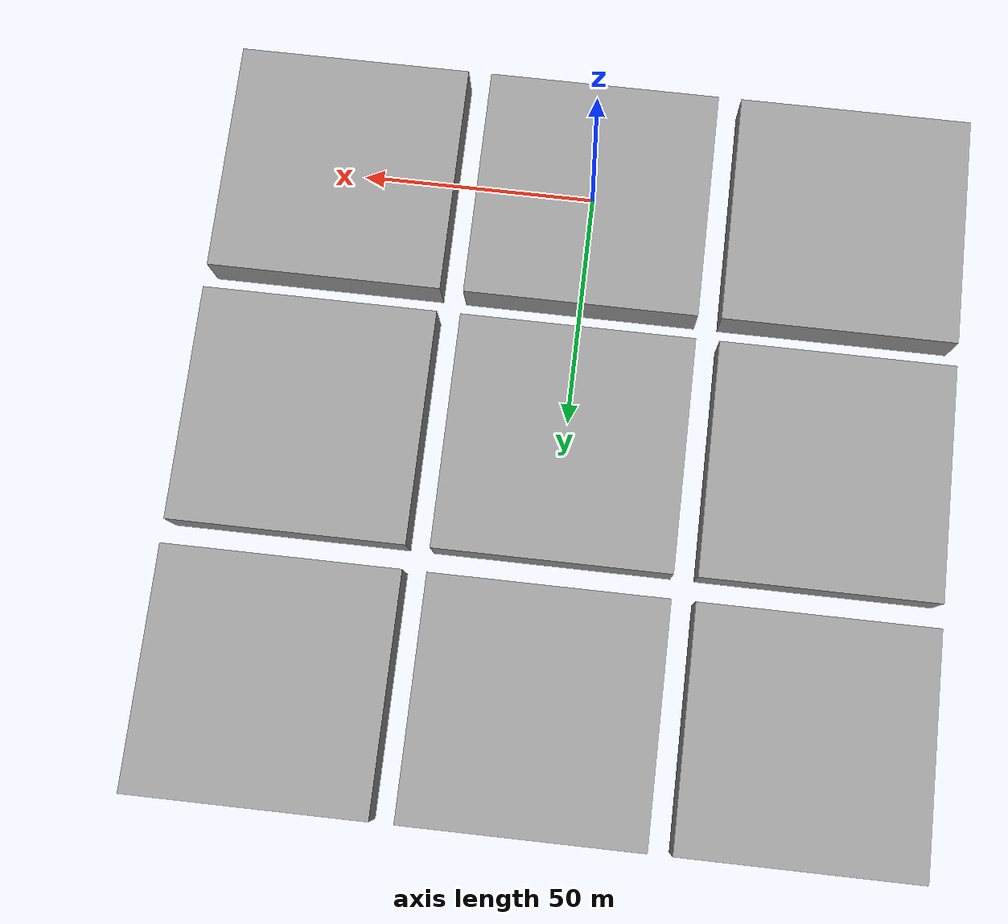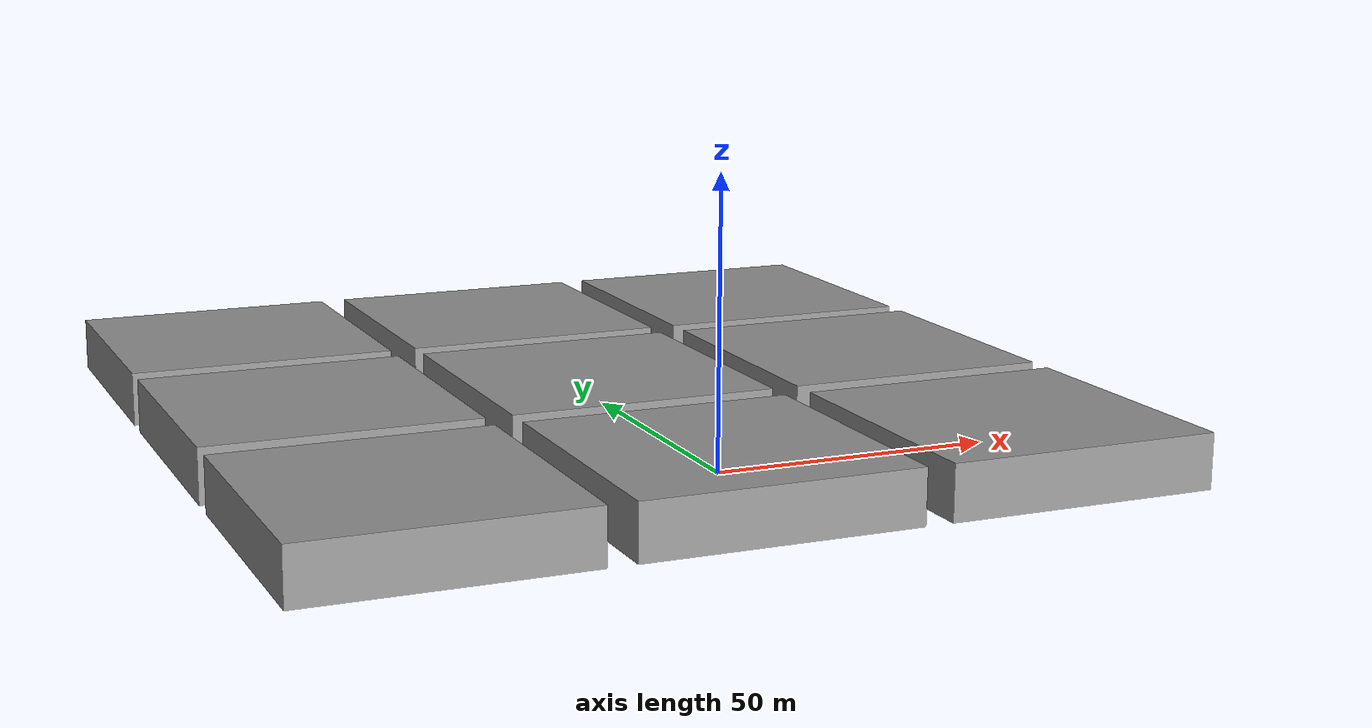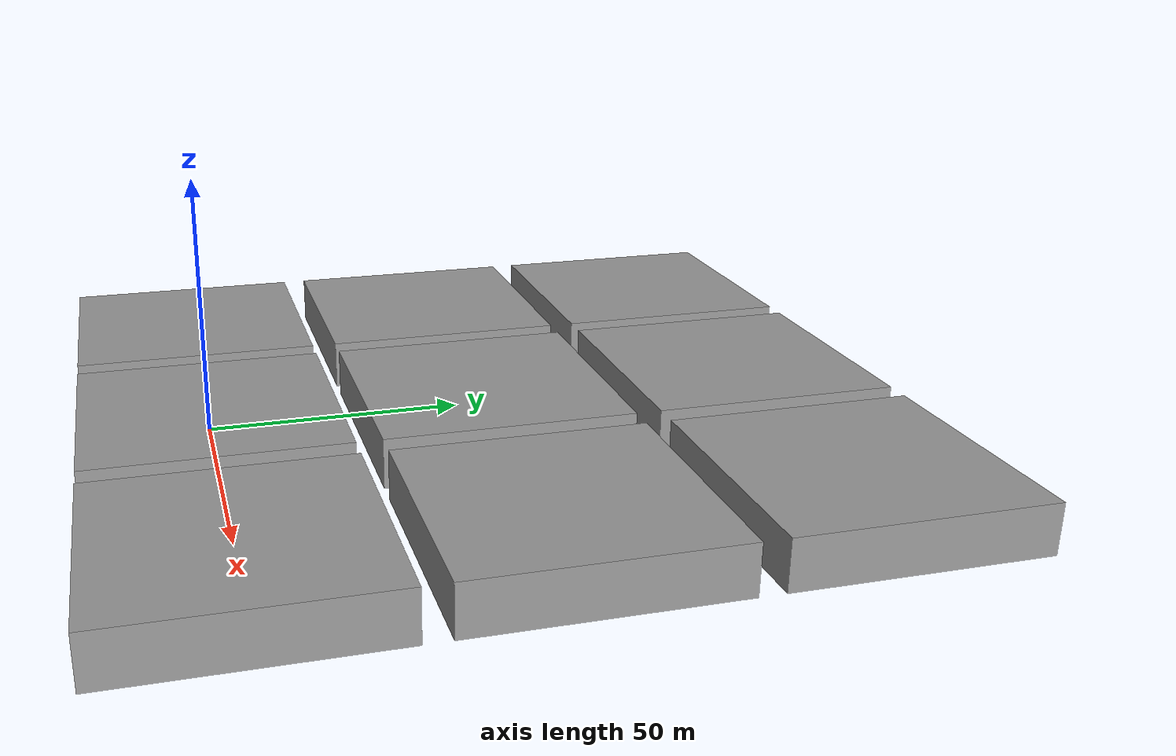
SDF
<?xml version='1.0'?>
<sdf version='1.6'>
  <model name='minpillar9_50'>
    <link name='link'>
      <pose frame=''>0 0 0 0 -0 0</pose>
      <inertial>
        <mass>1</mass>
        <inertia>
          <ixx>0.166667</ixx>
          <ixy>0</ixy>
          <ixz>0</ixz>
          <iyy>0.166667</iyy>
          <iyz>0</iyz>
          <izz>0.166667</izz>
        </inertia>
        <pose frame=''>0 0 0 0 -0 0</pose>
      </inertial>
      <self_collide>0</self_collide>
      <kinematic>0</kinematic>
      <gravity>1</gravity>
      <visual name='visual'>
        <geometry>
          <box>
            <size>50 50 10</size>
          </box>
        </geometry>
        <material>
          <script>
            <name>Gazebo/Grey</name>
            <uri>file://media/materials/scripts/gazebo.material</uri>
          </script>
          <ambient>0.3 0.3 0.3 1</ambient>
          <diffuse>0.7 0.7 0.7 1</diffuse>
          <specular>0.01 0.01 0.01 1</specular>
          <emissive>0 0 0 1</emissive>
          <shader type='vertex'>
            <normal_map>__default__</normal_map>
          </shader>
        </material>
        <pose frame=''>0 0 0 0 -0 0</pose>
        <transparency>0</transparency>
        <cast_shadows>1</cast_shadows>
      </visual>
      <collision name='collision'>
        <laser_retro>0</laser_retro>
        <max_contacts>10</max_contacts>
        <pose frame=''>0 0 0 0 -0 0</pose>
        <geometry>
          <box>
            <size>50 50 10</size>
          </box>
        </geometry>
        <surface>
          <friction>
            <ode>
              <mu>1</mu>
              <mu2>1</mu2>
              <fdir1>0 0 0</fdir1>
              <slip1>0</slip1>
              <slip2>0</slip2>
            </ode>
            <torsional>
              <coefficient>1</coefficient>
              <patch_radius>0</patch_radius>
              <surface_radius>0</surface_radius>
              <use_patch_radius>1</use_patch_radius>
              <ode>
                <slip>0</slip>
              </ode>
            </torsional>
          </friction>
          <bounce>
            <restitution_coefficient>0</restitution_coefficient>
            <threshold>1e+06</threshold>
          </bounce>
          <contact>
            <collide_without_contact>0</collide_without_contact>
            <collide_without_contact_bitmask>1</collide_without_contact_bitmask>
            <collide_bitmask>1</collide_bitmask>
            <ode>
              <soft_cfm>0</soft_cfm>
              <soft_erp>0.2</soft_erp>
              <kp>1e+13</kp>
              <kd>1</kd>
              <max_vel>0.01</max_vel>
              <min_depth>0</min_depth>
            </ode>
            <bullet>
              <split_impulse>1</split_impulse>
              <split_impulse_penetration_threshold>-0.01</split_impulse_penetration_threshold>
              <soft_cfm>0</soft_cfm>
              <soft_erp>0.2</soft_erp>
              <kp>1e+13</kp>
              <kd>1</kd>
            </bullet>
          </contact>
        </surface>
      </collision>
    </link>
    <link name='link_clone'>
      <pose frame=''>0 55 0 0 -0 0</pose>
      <inertial>
        <mass>1</mass>
        <inertia>
          <ixx>0.166667</ixx>
          <ixy>0</ixy>
          <ixz>0</ixz>
          <iyy>0.166667</iyy>
          <iyz>0</iyz>
          <izz>0.166667</izz>
        </inertia>
        <pose frame=''>0 0 0 0 -0 0</pose>
      </inertial>
      <self_collide>0</self_collide>
      <kinematic>0</kinematic>
      <gravity>1</gravity>
      <visual name='visual'>
        <geometry>
          <box>
            <size>50 50 10</size>
          </box>
        </geometry>
        <material>
          <script>
            <name>Gazebo/Grey</name>
            <uri>file://media/materials/scripts/gazebo.material</uri>
          </script>
          <ambient>0.3 0.3 0.3 1</ambient>
          <diffuse>0.7 0.7 0.7 1</diffuse>
          <specular>0.01 0.01 0.01 1</specular>
          <emissive>0 0 0 1</emissive>
          <shader type='vertex'>
            <normal_map>__default__</normal_map>
          </shader>
        </material>
        <pose frame=''>0 0 0 0 -0 0</pose>
        <transparency>0</transparency>
        <cast_shadows>1</cast_shadows>
      </visual>
      <collision name='collision'>
        <laser_retro>0</laser_retro>
        <max_contacts>10</max_contacts>
        <pose frame=''>0 0 0 0 -0 0</pose>
        <geometry>
          <box>
            <size>50 50 10</size>
          </box>
        </geometry>
        <surface>
          <friction>
            <ode>
              <mu>1</mu>
              <mu2>1</mu2>
              <fdir1>0 0 0</fdir1>
              <slip1>0</slip1>
              <slip2>0</slip2>
            </ode>
            <torsional>
              <coefficient>1</coefficient>
              <patch_radius>0</patch_radius>
              <surface_radius>0</surface_radius>
              <use_patch_radius>1</use_patch_radius>
              <ode>
                <slip>0</slip>
              </ode>
            </torsional>
          </friction>
          <bounce>
            <restitution_coefficient>0</restitution_coefficient>
            <threshold>1e+06</threshold>
          </bounce>
          <contact>
            <collide_without_contact>0</collide_without_contact>
            <collide_without_contact_bitmask>1</collide_without_contact_bitmask>
            <collide_bitmask>1</collide_bitmask>
            <ode>
              <soft_cfm>0</soft_cfm>
              <soft_erp>0.2</soft_erp>
              <kp>1e+13</kp>
              <kd>1</kd>
              <max_vel>0.01</max_vel>
              <min_depth>0</min_depth>
            </ode>
            <bullet>
              <split_impulse>1</split_impulse>
              <split_impulse_penetration_threshold>-0.01</split_impulse_penetration_threshold>
              <soft_cfm>0</soft_cfm>
              <soft_erp>0.2</soft_erp>
              <kp>1e+13</kp>
              <kd>1</kd>
            </bullet>
          </contact>
        </surface>
      </collision>
    </link>
    <link name='link_clone_0'>
      <pose frame=''>-55 0 0 0 -0 0</pose>
      <inertial>
        <mass>1</mass>
        <inertia>
          <ixx>0.166667</ixx>
          <ixy>0</ixy>
          <ixz>0</ixz>
          <iyy>0.166667</iyy>
          <iyz>0</iyz>
          <izz>0.166667</izz>
        </inertia>
        <pose frame=''>0 0 0 0 -0 0</pose>
      </inertial>
      <self_collide>0</self_collide>
      <kinematic>0</kinematic>
      <gravity>1</gravity>
      <visual name='visual'>
        <geometry>
          <box>
            <size>50 50 10</size>
          </box>
        </geometry>
        <material>
          <script>
            <name>Gazebo/Grey</name>
            <uri>file://media/materials/scripts/gazebo.material</uri>
          </script>
          <ambient>0.3 0.3 0.3 1</ambient>
          <diffuse>0.7 0.7 0.7 1</diffuse>
          <specular>0.01 0.01 0.01 1</specular>
          <emissive>0 0 0 1</emissive>
          <shader type='vertex'>
            <normal_map>__default__</normal_map>
          </shader>
        </material>
        <pose frame=''>0 0 0 0 -0 0</pose>
        <transparency>0</transparency>
        <cast_shadows>1</cast_shadows>
      </visual>
      <collision name='collision'>
        <laser_retro>0</laser_retro>
        <max_contacts>10</max_contacts>
        <pose frame=''>0 0 0 0 -0 0</pose>
        <geometry>
          <box>
            <size>50 50 10</size>
          </box>
        </geometry>
        <surface>
          <friction>
            <ode>
              <mu>1</mu>
              <mu2>1</mu2>
              <fdir1>0 0 0</fdir1>
              <slip1>0</slip1>
              <slip2>0</slip2>
            </ode>
            <torsional>
              <coefficient>1</coefficient>
              <patch_radius>0</patch_radius>
              <surface_radius>0</surface_radius>
              <use_patch_radius>1</use_patch_radius>
              <ode>
                <slip>0</slip>
              </ode>
            </torsional>
          </friction>
          <bounce>
            <restitution_coefficient>0</restitution_coefficient>
            <threshold>1e+06</threshold>
          </bounce>
          <contact>
            <collide_without_contact>0</collide_without_contact>
            <collide_without_contact_bitmask>1</collide_without_contact_bitmask>
            <collide_bitmask>1</collide_bitmask>
            <ode>
              <soft_cfm>0</soft_cfm>
              <soft_erp>0.2</soft_erp>
              <kp>1e+13</kp>
              <kd>1</kd>
              <max_vel>0.01</max_vel>
              <min_depth>0</min_depth>
            </ode>
            <bullet>
              <split_impulse>1</split_impulse>
              <split_impulse_penetration_threshold>-0.01</split_impulse_penetration_threshold>
              <soft_cfm>0</soft_cfm>
              <soft_erp>0.2</soft_erp>
              <kp>1e+13</kp>
              <kd>1</kd>
            </bullet>
          </contact>
        </surface>
      </collision>
    </link>
    <link name='link_clone_1'>
      <pose frame=''>-55 55 0 0 -0 0</pose>
      <inertial>
        <mass>1</mass>
        <inertia>
          <ixx>0.166667</ixx>
          <ixy>0</ixy>
          <ixz>0</ixz>
          <iyy>0.166667</iyy>
          <iyz>0</iyz>
          <izz>0.166667</izz>
        </inertia>
        <pose frame=''>0 0 0 0 -0 0</pose>
      </inertial>
      <self_collide>0</self_collide>
      <kinematic>0</kinematic>
      <gravity>1</gravity>
      <visual name='visual'>
        <geometry>
          <box>
            <size>50 50 10</size>
          </box>
        </geometry>
        <material>
          <script>
            <name>Gazebo/Grey</name>
            <uri>file://media/materials/scripts/gazebo.material</uri>
          </script>
          <ambient>0.3 0.3 0.3 1</ambient>
          <diffuse>0.7 0.7 0.7 1</diffuse>
          <specular>0.01 0.01 0.01 1</specular>
          <emissive>0 0 0 1</emissive>
          <shader type='vertex'>
            <normal_map>__default__</normal_map>
          </shader>
        </material>
        <pose frame=''>0 0 0 0 -0 0</pose>
        <transparency>0</transparency>
        <cast_shadows>1</cast_shadows>
      </visual>
      <collision name='collision'>
        <laser_retro>0</laser_retro>
        <max_contacts>10</max_contacts>
        <pose frame=''>0 0 0 0 -0 0</pose>
        <geometry>
          <box>
            <size>50 50 10</size>
          </box>
        </geometry>
        <surface>
          <friction>
            <ode>
              <mu>1</mu>
              <mu2>1</mu2>
              <fdir1>0 0 0</fdir1>
              <slip1>0</slip1>
              <slip2>0</slip2>
            </ode>
            <torsional>
              <coefficient>1</coefficient>
              <patch_radius>0</patch_radius>
              <surface_radius>0</surface_radius>
              <use_patch_radius>1</use_patch_radius>
              <ode>
                <slip>0</slip>
              </ode>
            </torsional>
          </friction>
          <bounce>
            <restitution_coefficient>0</restitution_coefficient>
            <threshold>1e+06</threshold>
          </bounce>
          <contact>
            <collide_without_contact>0</collide_without_contact>
            <collide_without_contact_bitmask>1</collide_without_contact_bitmask>
            <collide_bitmask>1</collide_bitmask>
            <ode>
              <soft_cfm>0</soft_cfm>
              <soft_erp>0.2</soft_erp>
              <kp>1e+13</kp>
              <kd>1</kd>
              <max_vel>0.01</max_vel>
              <min_depth>0</min_depth>
            </ode>
            <bullet>
              <split_impulse>1</split_impulse>
              <split_impulse_penetration_threshold>-0.01</split_impulse_penetration_threshold>
              <soft_cfm>0</soft_cfm>
              <soft_erp>0.2</soft_erp>
              <kp>1e+13</kp>
              <kd>1</kd>
            </bullet>
          </contact>
        </surface>
      </collision>
    </link>
    <link name='link_clone_2'>
      <pose frame=''>-55 110 0 0 -0 0</pose>
      <inertial>
        <mass>1</mass>
        <inertia>
          <ixx>0.166667</ixx>
          <ixy>0</ixy>
          <ixz>0</ixz>
          <iyy>0.166667</iyy>
          <iyz>0</iyz>
          <izz>0.166667</izz>
        </inertia>
        <pose frame=''>0 0 0 0 -0 0</pose>
      </inertial>
      <self_collide>0</self_collide>
      <kinematic>0</kinematic>
      <gravity>1</gravity>
      <visual name='visual'>
        <geometry>
          <box>
            <size>50 50 10</size>
          </box>
        </geometry>
        <material>
          <script>
            <name>Gazebo/Grey</name>
            <uri>file://media/materials/scripts/gazebo.material</uri>
          </script>
          <ambient>0.3 0.3 0.3 1</ambient>
          <diffuse>0.7 0.7 0.7 1</diffuse>
          <specular>0.01 0.01 0.01 1</specular>
          <emissive>0 0 0 1</emissive>
          <shader type='vertex'>
            <normal_map>__default__</normal_map>
          </shader>
        </material>
        <pose frame=''>0 0 0 0 -0 0</pose>
        <transparency>0</transparency>
        <cast_shadows>1</cast_shadows>
      </visual>
      <collision name='collision'>
        <laser_retro>0</laser_retro>
        <max_contacts>10</max_contacts>
        <pose frame=''>0 0 0 0 -0 0</pose>
        <geometry>
          <box>
            <size>50 50 10</size>
          </box>
        </geometry>
        <surface>
          <friction>
            <ode>
              <mu>1</mu>
              <mu2>1</mu2>
              <fdir1>0 0 0</fdir1>
              <slip1>0</slip1>
              <slip2>0</slip2>
            </ode>
            <torsional>
              <coefficient>1</coefficient>
              <patch_radius>0</patch_radius>
              <surface_radius>0</surface_radius>
              <use_patch_radius>1</use_patch_radius>
              <ode>
                <slip>0</slip>
              </ode>
            </torsional>
          </friction>
          <bounce>
            <restitution_coefficient>0</restitution_coefficient>
            <threshold>1e+06</threshold>
          </bounce>
          <contact>
            <collide_without_contact>0</collide_without_contact>
            <collide_without_contact_bitmask>1</collide_without_contact_bitmask>
            <collide_bitmask>1</collide_bitmask>
            <ode>
              <soft_cfm>0</soft_cfm>
              <soft_erp>0.2</soft_erp>
              <kp>1e+13</kp>
              <kd>1</kd>
              <max_vel>0.01</max_vel>
              <min_depth>0</min_depth>
            </ode>
            <bullet>
              <split_impulse>1</split_impulse>
              <split_impulse_penetration_threshold>-0.01</split_impulse_penetration_threshold>
              <soft_cfm>0</soft_cfm>
              <soft_erp>0.2</soft_erp>
              <kp>1e+13</kp>
              <kd>1</kd>
            </bullet>
          </contact>
        </surface>
      </collision>
    </link>
    <link name='link_clone_3'>
      <pose frame=''>0 110 0 0 -0 0</pose>
      <inertial>
        <mass>1</mass>
        <inertia>
          <ixx>0.166667</ixx>
          <ixy>0</ixy>
          <ixz>0</ixz>
          <iyy>0.166667</iyy>
          <iyz>0</iyz>
          <izz>0.166667</izz>
        </inertia>
        <pose frame=''>0 0 0 0 -0 0</pose>
      </inertial>
      <self_collide>0</self_collide>
      <kinematic>0</kinematic>
      <gravity>1</gravity>
      <visual name='visual'>
        <geometry>
          <box>
            <size>50 50 10</size>
          </box>
        </geometry>
        <material>
          <script>
            <name>Gazebo/Grey</name>
            <uri>file://media/materials/scripts/gazebo.material</uri>
          </script>
          <ambient>0.3 0.3 0.3 1</ambient>
          <diffuse>0.7 0.7 0.7 1</diffuse>
          <specular>0.01 0.01 0.01 1</specular>
          <emissive>0 0 0 1</emissive>
          <shader type='vertex'>
            <normal_map>__default__</normal_map>
          </shader>
        </material>
        <pose frame=''>0 0 0 0 -0 0</pose>
        <transparency>0</transparency>
        <cast_shadows>1</cast_shadows>
      </visual>
      <collision name='collision'>
        <laser_retro>0</laser_retro>
        <max_contacts>10</max_contacts>
        <pose frame=''>0 0 0 0 -0 0</pose>
        <geometry>
          <box>
            <size>50 50 10</size>
          </box>
        </geometry>
        <surface>
          <friction>
            <ode>
              <mu>1</mu>
              <mu2>1</mu2>
              <fdir1>0 0 0</fdir1>
              <slip1>0</slip1>
              <slip2>0</slip2>
            </ode>
            <torsional>
              <coefficient>1</coefficient>
              <patch_radius>0</patch_radius>
              <surface_radius>0</surface_radius>
              <use_patch_radius>1</use_patch_radius>
              <ode>
                <slip>0</slip>
              </ode>
            </torsional>
          </friction>
          <bounce>
            <restitution_coefficient>0</restitution_coefficient>
            <threshold>1e+06</threshold>
          </bounce>
          <contact>
            <collide_without_contact>0</collide_without_contact>
            <collide_without_contact_bitmask>1</collide_without_contact_bitmask>
            <collide_bitmask>1</collide_bitmask>
            <ode>
              <soft_cfm>0</soft_cfm>
              <soft_erp>0.2</soft_erp>
              <kp>1e+13</kp>
              <kd>1</kd>
              <max_vel>0.01</max_vel>
              <min_depth>0</min_depth>
            </ode>
            <bullet>
              <split_impulse>1</split_impulse>
              <split_impulse_penetration_threshold>-0.01</split_impulse_penetration_threshold>
              <soft_cfm>0</soft_cfm>
              <soft_erp>0.2</soft_erp>
              <kp>1e+13</kp>
              <kd>1</kd>
            </bullet>
          </contact>
        </surface>
      </collision>
    </link>
    <link name='link_clone_4'>
      <pose frame=''>55 110 0 0 -0 0</pose>
      <inertial>
        <mass>1</mass>
        <inertia>
          <ixx>0.166667</ixx>
          <ixy>0</ixy>
          <ixz>0</ixz>
          <iyy>0.166667</iyy>
          <iyz>0</iyz>
          <izz>0.166667</izz>
        </inertia>
        <pose frame=''>0 0 0 0 -0 0</pose>
      </inertial>
      <self_collide>0</self_collide>
      <kinematic>0</kinematic>
      <gravity>1</gravity>
      <visual name='visual'>
        <geometry>
          <box>
            <size>50 50 10</size>
          </box>
        </geometry>
        <material>
          <script>
            <name>Gazebo/Grey</name>
            <uri>file://media/materials/scripts/gazebo.material</uri>
          </script>
          <ambient>0.3 0.3 0.3 1</ambient>
          <diffuse>0.7 0.7 0.7 1</diffuse>
          <specular>0.01 0.01 0.01 1</specular>
          <emissive>0 0 0 1</emissive>
          <shader type='vertex'>
            <normal_map>__default__</normal_map>
          </shader>
        </material>
        <pose frame=''>0 0 0 0 -0 0</pose>
        <transparency>0</transparency>
        <cast_shadows>1</cast_shadows>
      </visual>
      <collision name='collision'>
        <laser_retro>0</laser_retro>
        <max_contacts>10</max_contacts>
        <pose frame=''>0 0 0 0 -0 0</pose>
        <geometry>
          <box>
            <size>50 50 10</size>
          </box>
        </geometry>
        <surface>
          <friction>
            <ode>
              <mu>1</mu>
              <mu2>1</mu2>
              <fdir1>0 0 0</fdir1>
              <slip1>0</slip1>
              <slip2>0</slip2>
            </ode>
            <torsional>
              <coefficient>1</coefficient>
              <patch_radius>0</patch_radius>
              <surface_radius>0</surface_radius>
              <use_patch_radius>1</use_patch_radius>
              <ode>
                <slip>0</slip>
              </ode>
            </torsional>
          </friction>
          <bounce>
            <restitution_coefficient>0</restitution_coefficient>
            <threshold>1e+06</threshold>
          </bounce>
          <contact>
            <collide_without_contact>0</collide_without_contact>
            <collide_without_contact_bitmask>1</collide_without_contact_bitmask>
            <collide_bitmask>1</collide_bitmask>
            <ode>
              <soft_cfm>0</soft_cfm>
              <soft_erp>0.2</soft_erp>
              <kp>1e+13</kp>
              <kd>1</kd>
              <max_vel>0.01</max_vel>
              <min_depth>0</min_depth>
            </ode>
            <bullet>
              <split_impulse>1</split_impulse>
              <split_impulse_penetration_threshold>-0.01</split_impulse_penetration_threshold>
              <soft_cfm>0</soft_cfm>
              <soft_erp>0.2</soft_erp>
              <kp>1e+13</kp>
              <kd>1</kd>
            </bullet>
          </contact>
        </surface>
      </collision>
    </link>
    <link name='link_clone_5'>
      <pose frame=''>55 55 0 0 -0 0</pose>
      <inertial>
        <mass>1</mass>
        <inertia>
          <ixx>0.166667</ixx>
          <ixy>0</ixy>
          <ixz>0</ixz>
          <iyy>0.166667</iyy>
          <iyz>0</iyz>
          <izz>0.166667</izz>
        </inertia>
        <pose frame=''>0 0 0 0 -0 0</pose>
      </inertial>
      <self_collide>0</self_collide>
      <kinematic>0</kinematic>
      <gravity>1</gravity>
      <visual name='visual'>
        <geometry>
          <box>
            <size>50 50 10</size>
          </box>
        </geometry>
        <material>
          <script>
            <name>Gazebo/Grey</name>
            <uri>file://media/materials/scripts/gazebo.material</uri>
          </script>
          <ambient>0.3 0.3 0.3 1</ambient>
          <diffuse>0.7 0.7 0.7 1</diffuse>
          <specular>0.01 0.01 0.01 1</specular>
          <emissive>0 0 0 1</emissive>
          <shader type='vertex'>
            <normal_map>__default__</normal_map>
          </shader>
        </material>
        <pose frame=''>0 0 0 0 -0 0</pose>
        <transparency>0</transparency>
        <cast_shadows>1</cast_shadows>
      </visual>
      <collision name='collision'>
        <laser_retro>0</laser_retro>
        <max_contacts>10</max_contacts>
        <pose frame=''>0 0 0 0 -0 0</pose>
        <geometry>
          <box>
            <size>50 50 10</size>
          </box>
        </geometry>
        <surface>
          <friction>
            <ode>
              <mu>1</mu>
              <mu2>1</mu2>
              <fdir1>0 0 0</fdir1>
              <slip1>0</slip1>
              <slip2>0</slip2>
            </ode>
            <torsional>
              <coefficient>1</coefficient>
              <patch_radius>0</patch_radius>
              <surface_radius>0</surface_radius>
              <use_patch_radius>1</use_patch_radius>
              <ode>
                <slip>0</slip>
              </ode>
            </torsional>
          </friction>
          <bounce>
            <restitution_coefficient>0</restitution_coefficient>
            <threshold>1e+06</threshold>
          </bounce>
          <contact>
            <collide_without_contact>0</collide_without_contact>
            <collide_without_contact_bitmask>1</collide_without_contact_bitmask>
            <collide_bitmask>1</collide_bitmask>
            <ode>
              <soft_cfm>0</soft_cfm>
              <soft_erp>0.2</soft_erp>
              <kp>1e+13</kp>
              <kd>1</kd>
              <max_vel>0.01</max_vel>
              <min_depth>0</min_depth>
            </ode>
            <bullet>
              <split_impulse>1</split_impulse>
              <split_impulse_penetration_threshold>-0.01</split_impulse_penetration_threshold>
              <soft_cfm>0</soft_cfm>
              <soft_erp>0.2</soft_erp>
              <kp>1e+13</kp>
              <kd>1</kd>
            </bullet>
          </contact>
        </surface>
      </collision>
    </link>
    <link name='link_clone_6'>
      <pose frame=''>55 0 0 0 -0 0</pose>
      <inertial>
        <mass>1</mass>
        <inertia>
          <ixx>0.166667</ixx>
          <ixy>0</ixy>
          <ixz>0</ixz>
          <iyy>0.166667</iyy>
          <iyz>0</iyz>
          <izz>0.166667</izz>
        </inertia>
        <pose frame=''>0 0 0 0 -0 0</pose>
      </inertial>
      <self_collide>0</self_collide>
      <kinematic>0</kinematic>
      <gravity>1</gravity>
      <visual name='visual'>
        <geometry>
          <box>
            <size>50 50 10</size>
          </box>
        </geometry>
        <material>
          <script>
            <name>Gazebo/Grey</name>
            <uri>file://media/materials/scripts/gazebo.material</uri>
          </script>
          <ambient>0.3 0.3 0.3 1</ambient>
          <diffuse>0.7 0.7 0.7 1</diffuse>
          <specular>0.01 0.01 0.01 1</specular>
          <emissive>0 0 0 1</emissive>
          <shader type='vertex'>
            <normal_map>__default__</normal_map>
          </shader>
        </material>
        <pose frame=''>0 0 0 0 -0 0</pose>
        <transparency>0</transparency>
        <cast_shadows>1</cast_shadows>
      </visual>
      <collision name='collision'>
        <laser_retro>0</laser_retro>
        <max_contacts>10</max_contacts>
        <pose frame=''>0 0 0 0 -0 0</pose>
        <geometry>
          <box>
            <size>50 50 10</size>
          </box>
        </geometry>
        <surface>
          <friction>
            <ode>
              <mu>1</mu>
              <mu2>1</mu2>
              <fdir1>0 0 0</fdir1>
              <slip1>0</slip1>
              <slip2>0</slip2>
            </ode>
            <torsional>
              <coefficient>1</coefficient>
              <patch_radius>0</patch_radius>
              <surface_radius>0</surface_radius>
              <use_patch_radius>1</use_patch_radius>
              <ode>
                <slip>0</slip>
              </ode>
            </torsional>
          </friction>
          <bounce>
            <restitution_coefficient>0</restitution_coefficient>
            <threshold>1e+06</threshold>
          </bounce>
          <contact>
            <collide_without_contact>0</collide_without_contact>
            <collide_without_contact_bitmask>1</collide_without_contact_bitmask>
            <collide_bitmask>1</collide_bitmask>
            <ode>
              <soft_cfm>0</soft_cfm>
              <soft_erp>0.2</soft_erp>
              <kp>1e+13</kp>
              <kd>1</kd>
              <max_vel>0.01</max_vel>
              <min_depth>0</min_depth>
            </ode>
            <bullet>
              <split_impulse>1</split_impulse>
              <split_impulse_penetration_threshold>-0.01</split_impulse_penetration_threshold>
              <soft_cfm>0</soft_cfm>
              <soft_erp>0.2</soft_erp>
              <kp>1e+13</kp>
              <kd>1</kd>
            </bullet>
          </contact>
        </surface>
      </collision>
    </link>
    <static>1</static>
    <allow_auto_disable>1</allow_auto_disable>
  </model>
</sdf>
